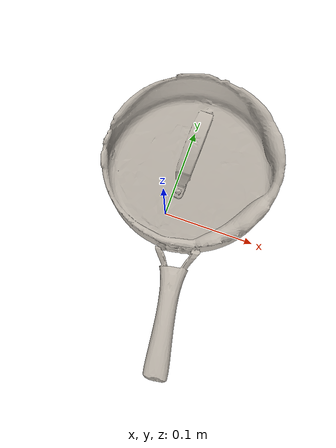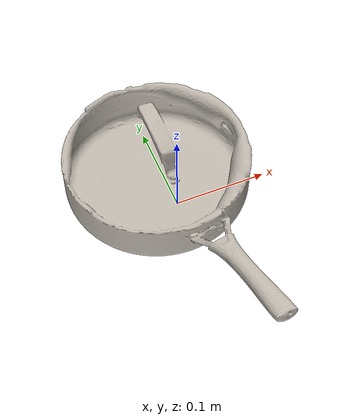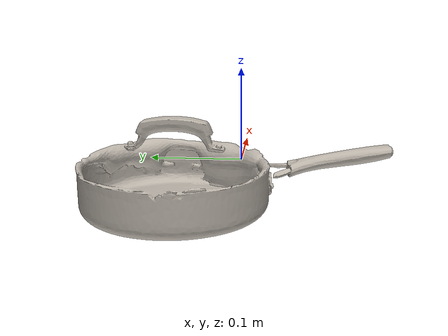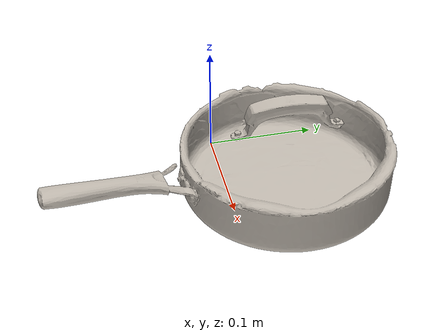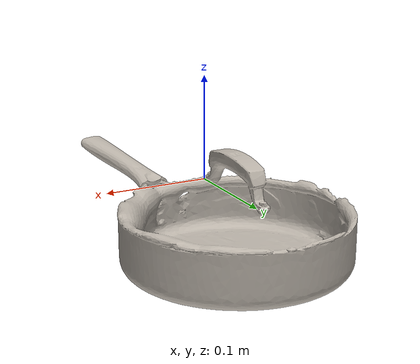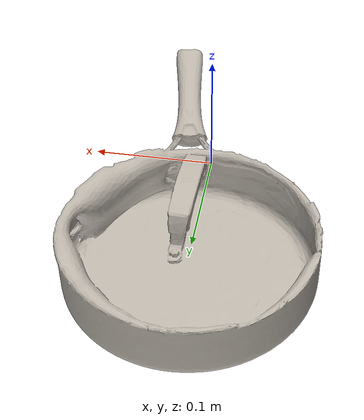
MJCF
<mujoco model="bread">
  <asset>
    <mesh file="nontextured.stl" name="obj_mesh" scale="0.8 0.8 0.8"/>
    <texture file="../../../../../textures/bread.png" type="2d" name="tex-bread" />
    <material name="bread" reflectance="0.7" texrepeat="15 15" texture="tex-bread" texuniform="true"/>
  </asset>
  <worldbody>
    <body>
      <body name="collision">
        <geom pos="0.033170500000000006 0.033898999999999985 -0.061908000000000005" mesh="obj_mesh" type="mesh" solimp="0.998 0.998 0.001" solref="0.001 1" density="50" friction="0.95 0.3 0.1"  material="bread" group="1" condim="4"/>
      </body>
      <body name="visual">
        <geom pos="0.033170500000000006 0.033898999999999985 -0.061908000000000005" mesh="obj_mesh" type="mesh" material="bread"  conaffinity="0" contype="0"  group="0" mass="0.0001"/>
        <geom pos="0.033170500000000006 0.033898999999999985 -0.061908000000000005" mesh="obj_mesh" type="mesh" material="bread"  conaffinity="0" contype="0"  group="1" mass="0.0001"/>
      </body>
      <site rgba="0 0 0 0" size="0.005" pos="0 0 -0.07101" name="bottom_site"/>
      <site rgba="0 0 0 0" size="0.005" pos="0 0 0.07101" name="top_site"/>
      <site rgba="0 0 0 0" size="0.005" pos="0.13330550000000002 0.220409 0.07101" name="horizontal_radius_site"/>
    </body>
  </worldbody>
</mujoco>
